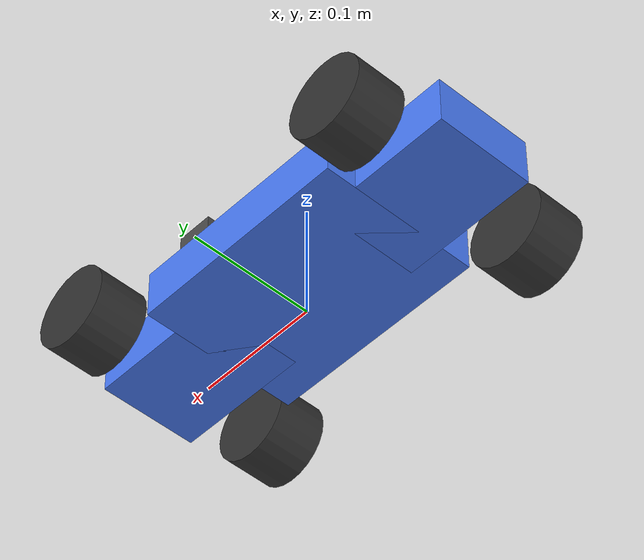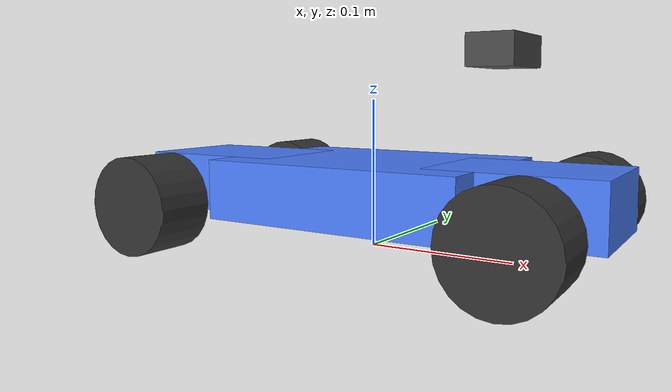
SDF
<?xml version="1.0"?>
<sdf version="1.9">
  <model name="rc_ackermann_vehicle">

    <!-- Chassis -->
    <link name="chassis">
      <pose>0 0 0.04 0 0 0</pose>
      <inertial>
        <mass>2.0</mass>
        <inertia>
          <ixx>0.013</ixx>
          <iyy>0.027</iyy>
          <izz>0.033</izz>
        </inertia>
      </inertial>

      <collision name="collision">
        <geometry>
          <box>
            <size>0.4 0.2 0.04</size>
          </box>
        </geometry>
        <surface>
          <friction>
            <ode>
              <mu>0.01</mu>
              <mu2>0.01</mu2>
            </ode>
          </friction>
        </surface>
      </collision>

    </link>

    <!-- Middle Chassis -->
    <link name="chassis_middle">
      <pose>0 0 0.04 0 0 0</pose>
      <inertial>
        <mass>1.2</mass>
        <inertia>
          <ixx>0.006</ixx>
          <iyy>0.013</iyy>
          <izz>0.016</izz>
        </inertia>
      </inertial>
      <collision name="collision">
        <geometry>
          <box>
            <size>0.18 0.13 0.04</size>
          </box>
        </geometry>
        <surface>
          <friction>
            <ode>
              <mu>0.01</mu>
              <mu2>0.01</mu2>
            </ode>
          </friction>
        </surface>
      </collision>
      <visual name="visual">
        <geometry>
          <box>
            <size>0.18 0.13 0.04</size>
          </box>
        </geometry>
        <material>
          <ambient>0.2 0.4 1.0 1</ambient>
          <diffuse>0.3 0.5 1.0 1</diffuse>
        </material>
      </visual>
    </link>

    <!-- Front Chassis -->
    <link name="chassis_front">
      <pose>0.11 0 0.04 0 0 0</pose>
      <inertial>
        <mass>0.4</mass>
        <inertia>
          <ixx>0.002</ixx>
          <iyy>0.004</iyy>
          <izz>0.005</izz>
        </inertia>
      </inertial>
      <collision name="collision">
        <geometry>
          <box>
            <size>0.11 0.08 0.04</size>
          </box>
        </geometry>
        <surface>
          <friction>
            <ode>
              <mu>0.01</mu>
              <mu2>0.01</mu2>
            </ode>
          </friction>
        </surface>
      </collision>
      <visual name="visual">
        <geometry>
          <box>
            <size>0.11 0.08 0.04</size>
          </box>
        </geometry>
        <material>
          <ambient>0.2 0.4 1.0 1</ambient>
          <diffuse>0.3 0.5 1.0 1</diffuse>
        </material>
      </visual>
    </link>

    <!-- Back Chassis -->
    <link name="chassis_back">
      <pose>-0.115 0 0.04 0 0 0</pose>
      <inertial>
        <mass>0.4</mass>
        <inertia>
          <ixx>0.002</ixx>
          <iyy>0.004</iyy>
          <izz>0.005</izz>
        </inertia>
      </inertial>
      <collision name="collision">
        <geometry>
          <box>
            <size>0.11 0.08 0.04</size>
          </box>
        </geometry>
        <surface>
          <friction>
            <ode>
              <mu>0.01</mu>
              <mu2>0.01</mu2>
            </ode>
          </friction>
        </surface>
      </collision>
      <visual name="visual">
        <geometry>
          <box>
            <size>0.11 0.08 0.04</size>
          </box>
        </geometry>
        <material>
          <ambient>0.2 0.4 1.0 1</ambient>
          <diffuse>0.3 0.5 1.0 1</diffuse>
        </material>
      </visual>
    </link>

    <!-- Rear Right Wheel -->
    <link name="rear_right_wheel">
      <pose>-0.127 -0.08255 0.03 -1.5707 0 0</pose>
      <inertial>
        <mass>0.3</mass>
        <inertia>
          <ixx>0.00027</ixx>
          <iyy>0.00027</iyy>
          <izz>0.00027</izz>
        </inertia>
      </inertial>

      <collision name="collision">
        <geometry>
          <cylinder>
            <radius>0.033</radius>
            <length>0.04</length>
          </cylinder>
        </geometry>
        <surface>
          <friction>
            <ode>
              <mu>1.0</mu>
              <mu2>1.0</mu2>
            </ode>
          </friction>
        </surface>
      </collision>

      <visual name="visual">
        <geometry>
          <cylinder>
            <radius>0.033</radius>
            <length>0.04</length>
          </cylinder>
        </geometry>
        <material>
          <ambient>0.1 0.1 0.1 1</ambient>
          <diffuse>0.2 0.2 0.2 1</diffuse>
        </material>
      </visual>
    </link>

    <!-- Rear Left Wheel -->
    <link name="rear_left_wheel">
      <pose>-0.127 0.08255 0.03 -1.5707 0 0</pose>
      <inertial>
        <mass>0.3</mass>
        <inertia>
          <ixx>0.00027</ixx>
          <iyy>0.00027</iyy>
          <izz>0.00027</izz>
        </inertia>
      </inertial>
      <collision name="collision">
        <geometry>
          <cylinder>
            <radius>0.033</radius>
            <length>0.04</length>
          </cylinder>
        </geometry>
        <surface>
          <friction>
            <ode>
              <mu>1.0</mu>
              <mu2>1.0</mu2>
            </ode>
          </friction>
        </surface>
      </collision>
      <visual name="visual">
        <geometry>
          <cylinder>
            <radius>0.033</radius>
            <length>0.04</length>
          </cylinder>
        </geometry>
        <material>
          <ambient>0.1 0.1 0.1 1</ambient>
          <diffuse>0.2 0.2 0.2 1</diffuse>
        </material>
      </visual>
    </link>

    <!-- Front Left Wheel -->
    <link name="front_left_wheel">
      <pose relative_to="front_left_steer">0 0 -0.01 -1.5707 0 0</pose>
      <inertial>
        <mass>0.3</mass>
        <inertia>
          <ixx>0.00027</ixx>
          <iyy>0.00027</iyy>
          <izz>0.00027</izz>
        </inertia>
      </inertial>

      <collision name="collision">
        <geometry>
          <cylinder>
            <radius>0.033</radius>
            <length>0.04</length>
          </cylinder>
        </geometry>
        <surface>
          <friction>
            <ode>
              <mu>1.0</mu>
              <mu2>1.0</mu2>
            </ode>
          </friction>
        </surface>
      </collision>

      <visual name="visual">
        <geometry>
          <cylinder>
            <radius>0.033</radius>
            <length>0.04</length>
          </cylinder>
        </geometry>
        <material>
          <ambient>0.1 0.1 0.1 1</ambient>
          <diffuse>0.2 0.2 0.2 1</diffuse>
        </material>
      </visual>
    </link>

    <!-- Front Right Wheel -->
    <link name="front_right_wheel">
      <pose relative_to="front_right_steer">0 0 -0.01 -1.5707 0 0</pose>
      <inertial>
        <mass>0.3</mass>
        <inertia>
          <ixx>0.00027</ixx>
          <iyy>0.00027</iyy>
          <izz>0.00027</izz>
        </inertia>
      </inertial>

      <collision name="collision">
        <geometry>
          <cylinder>
            <radius>0.033</radius>
            <length>0.04</length>
          </cylinder>
        </geometry>
        <surface>
          <friction>
            <ode>
              <mu>1.0</mu>
              <mu2>1.0</mu2>
            </ode>
          </friction>
        </surface>
      </collision>

      <visual name="visual">
        <geometry>
          <cylinder>
            <radius>0.033</radius>
            <length>0.04</length>
          </cylinder>
        </geometry>
        <material>
          <ambient>0.1 0.1 0.1 1</ambient>
          <diffuse>0.2 0.2 0.2 1</diffuse>
        </material>
      </visual>
    </link>

    <!-- Front Left Steering Knuckle -->
    <link name="front_left_steer">
      <pose>0.127 0.08255 0.04 0 0 0</pose>
      <inertial>
        <mass>0.1</mass>
        <inertia>
          <ixx>0.0001</ixx>
          <iyy>0.0001</iyy>
          <izz>0.0001</izz>
        </inertia>
      </inertial>
    </link>

    <!-- Front Right Steering Knuckle -->
    <link name="front_right_steer">
      <pose>0.127 -0.08255 0.04 0 0 0</pose>
      <inertial>
        <mass>0.1</mass>
        <inertia>
          <ixx>0.0001</ixx>
          <iyy>0.0001</iyy>
          <izz>0.0001</izz>
        </inertia>
      </inertial>
    </link>

    <!-- Rear Left Wheel Joint -->
    <joint name="rear_left_wheel_joint" type="revolute">
      <parent>chassis</parent>
      <child>rear_left_wheel</child>
      <axis>
        <xyz expressed_in="rear_left_wheel">0 0 1</xyz>
        <limit>
          <lower>-1e16</lower>
          <upper>1e16</upper>
        </limit>
        <dynamics>
          <damping>0.01</damping>
          <friction>0.01</friction>
        </dynamics>
      </axis>
    </joint>

    <!-- Rear Right Wheel Joint -->
    <joint name="rear_right_wheel_joint" type="revolute">
      <parent>chassis</parent>
      <child>rear_right_wheel</child>
      <axis>
        <xyz expressed_in="rear_right_wheel">0 0 1</xyz>
        <limit>
          <lower>-1e16</lower>
          <upper>1e16</upper>
        </limit>
        <dynamics>
          <damping>0.01</damping>
          <friction>0.01</friction>
        </dynamics>
      </axis>
    </joint>

    <!-- Front Left Steering Joint -->
    <joint name="front_left_steer_joint" type="revolute">
      <parent>chassis</parent>
      <child>front_left_steer</child>
      <axis>
        <xyz>0 0 1</xyz>
        <limit>
          <lower>-0.5</lower>
          <upper>0.5</upper>
          <effort>1e6</effort>
        </limit>
        <dynamics>
          <damping>0.02</damping>
        </dynamics>
      </axis>
    </joint>

    <!-- Front Right Steering Joint -->
    <joint name="front_right_steer_joint" type="revolute">
      <parent>chassis</parent>
      <child>front_right_steer</child>
      <axis>
        <xyz>0 0 1</xyz>
        <limit>
          <lower>-0.5</lower>
          <upper>0.5</upper>
          <effort>1e6</effort>
        </limit>
        <dynamics>
          <damping>0.02</damping>
        </dynamics>
      </axis>
    </joint>

    <!-- Front Left Wheel Joint -->
    <joint name="front_left_wheel_joint" type="revolute">
      <parent>front_left_steer</parent>
      <child>front_left_wheel</child>
      <axis>
        <xyz expressed_in="front_left_wheel">0 0 1</xyz>
        <limit>
          <lower>-1e16</lower>
          <upper>1e16</upper>
        </limit>
        <dynamics>
          <damping>0.01</damping>
          <friction>0.01</friction>
        </dynamics>
      </axis>
    </joint>

    <!-- Front Right Wheel Joint -->
    <joint name="front_right_wheel_joint" type="revolute">
      <parent>front_right_steer</parent>
      <child>front_right_wheel</child>
      <axis>
        <xyz expressed_in="front_right_wheel">0 0 1</xyz>
        <limit>
          <lower>-1e16</lower>
          <upper>1e16</upper>
        </limit>
        <dynamics>
          <damping>0.01</damping>
          <friction>0.01</friction>
        </dynamics>
      </axis>
    </joint>

    <!-- Ackermann Steering Plugin -->
    <plugin
      filename="gz-sim-ackermann-steering-system"
      name="gz::sim::systems::AckermannSteering">
      <left_joint>rear_left_wheel_joint</left_joint>
      <right_joint>rear_right_wheel_joint</right_joint>
      <left_steering_joint>front_left_steer_joint</left_steering_joint>
      <right_steering_joint>front_right_steer_joint</right_steering_joint>
      <wheel_base>0.254</wheel_base>
      <wheel_separation>0.14</wheel_separation>
      <kingpin_width>0.14</kingpin_width>
      <steering_limit>0.786</steering_limit>
      <wheel_radius>0.033</wheel_radius>
      <min_velocity>-2.0</min_velocity>
      <max_velocity>2.0</max_velocity>
      <min_acceleration>-5.0</min_acceleration>
      <max_acceleration>5.0</max_acceleration>
      <steer_p_gain>50.0</steer_p_gain>
      <topic>/model/rc_ackermann_vehicle/cmd_vel</topic>
      <odometry_topic>/model/rc_ackermann_vehicle/odom</odometry_topic>
    </plugin>

    <!-- Joint State Publisher Plugin -->
    <plugin
      filename="gz-sim-joint-state-publisher-system"
      name="gz::sim::systems::JointStatePublisher">
      <joint_name>rear_left_wheel_joint</joint_name>
      <joint_name>rear_right_wheel_joint</joint_name>
      <joint_name>front_left_wheel_joint</joint_name>
      <joint_name>front_right_wheel_joint</joint_name>
      <joint_name>front_left_steer_joint</joint_name>
      <joint_name>front_right_steer_joint</joint_name>
      <topic>/model/rc_ackermann_vehicle/joint_states</topic>
      <update_rate>50</update_rate>
    </plugin>

    <!-- Rear Axle Center Link -->
    <link name="rear_axle_center">
      <pose relative_to="chassis">-0.127 0 0.04 0 0 0</pose>
      <inertial>
        <mass>0.01</mass>
        <inertia>
          <ixx>0.00001</ixx>
          <iyy>0.00001</iyy>
          <izz>0.00001</izz>
        </inertia>
      </inertial>
    </link>

    <joint name="rear_axle_center_joint" type="fixed">
      <parent>chassis</parent>
      <child>rear_axle_center</child>
    </joint>

    <!-- Connect chassis parts together -->
    <joint name="chassis_middle_joint" type="fixed">
      <parent>chassis</parent>
      <child>chassis_middle</child>
    </joint>

    <joint name="chassis_front_joint" type="fixed">
      <parent>chassis</parent>
      <child>chassis_front</child>
    </joint>

    <joint name="chassis_back_joint" type="fixed">
      <parent>chassis</parent>
      <child>chassis_back</child>
    </joint>

    <!-- IMU Sensor at chassis center -->
    <link name="imu_link">
      <pose relative_to="chassis">-0.002 0 0.04 0 0 0</pose>
      <inertial>
        <mass>0.01</mass>
        <inertia>
          <ixx>0.00001</ixx>
          <iyy>0.00001</iyy>
          <izz>0.00001</izz>
        </inertia>
      </inertial>
      <sensor name="imu_sensor" type="imu">
        <always_on>1</always_on>
        <update_rate>100</update_rate>
        <imu>
          <angular_velocity>
            <x>
              <noise type="gaussian">
                <mean>0.0</mean>
                <stddev>0.009</stddev>
              </noise>
            </x>
            <y>
              <noise type="gaussian">
                <mean>0.0</mean>
                <stddev>0.009</stddev>
              </noise>
            </y>
            <z>
              <noise type="gaussian">
                <mean>0.0</mean>
                <stddev>0.009</stddev>
              </noise>
            </z>
          </angular_velocity>
          <linear_acceleration>
            <x>
              <noise type="gaussian">
                <mean>0.0</mean>
                <stddev>0.017</stddev>
              </noise>
            </x>
            <y>
              <noise type="gaussian">
                <mean>0.0</mean>
                <stddev>0.017</stddev>
              </noise>
            </y>
            <z>
              <noise type="gaussian">
                <mean>0.0</mean>
                <stddev>0.017</stddev>
              </noise>
            </z>
          </linear_acceleration>
        </imu>
        <topic>/model/rc_ackermann_vehicle/imu</topic>
      </sensor>
    </link>

    <joint name="imu_joint" type="fixed">
      <parent>chassis</parent>
      <child>imu_link</child>
    </joint>

    <!-- RGBD Camera (similar to OAK-D Lite) -->
    <link name="camera_link">
      <pose relative_to="rear_axle_center">0.219 0 0.05 0 0 0</pose>
      <inertial>
        <mass>0.001</mass>
        <inertia>
          <ixx>0.000001</ixx>
          <iyy>0.000001</iyy>
          <izz>0.000001</izz>
        </inertia>
      </inertial>

      <visual name="camera_visual">
        <geometry>
          <box>
            <size>0.03 0.05 0.02</size>
          </box>
        </geometry>
        <material>
          <ambient>0.2 0.2 0.2 1</ambient>
          <diffuse>0.3 0.3 0.3 1</diffuse>
        </material>
      </visual>

      <!-- RGB Camera -->
      <sensor name="rgbd_camera" type="rgbd_camera">
        <camera>
          <horizontal_fov>1.204</horizontal_fov>
          <image>
            <width>640</width>
            <height>400</height>
            <format>R8G8B8</format>
          </image>
          <clip>
            <near>0.1</near>
            <far>10.0</far>
          </clip>
          <noise>
            <type>gaussian</type>
            <mean>0.0</mean>
            <stddev>0.007</stddev>
          </noise>
        </camera>
        <always_on>1</always_on>
        <update_rate>15</update_rate>
        <visualize>false</visualize>
        <topic>camera</topic>
      </sensor>
    </link>

    <joint name="camera_joint" type="fixed">
      <parent>chassis</parent>
      <child>camera_link</child>
    </joint>

  </model>
</sdf>
